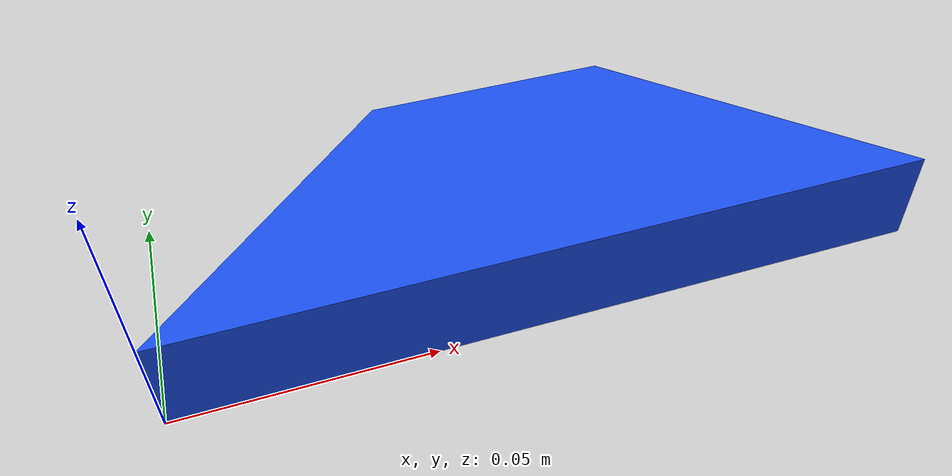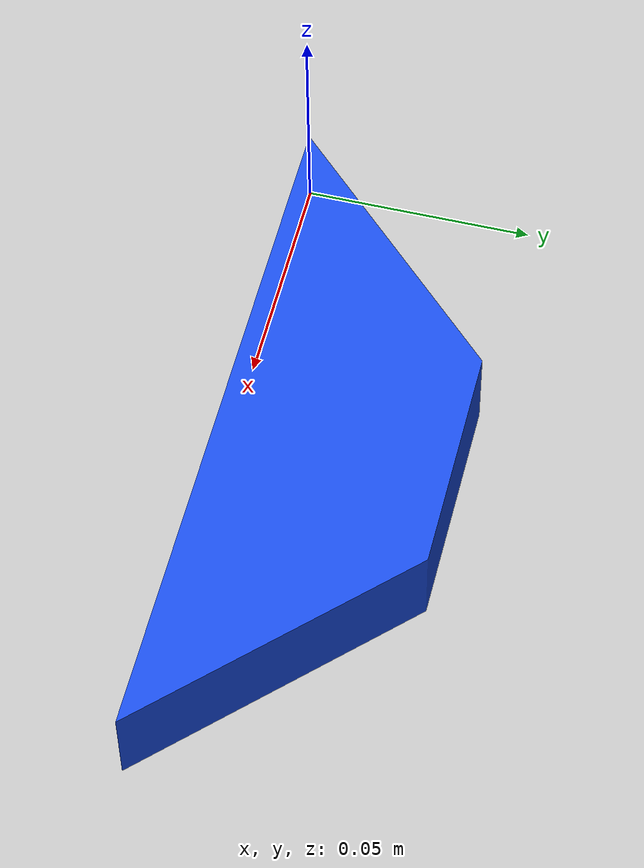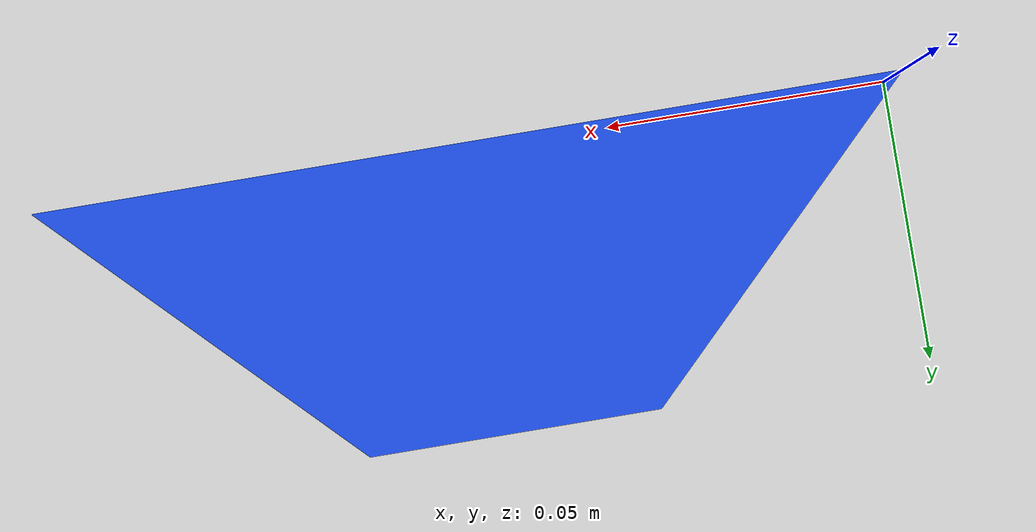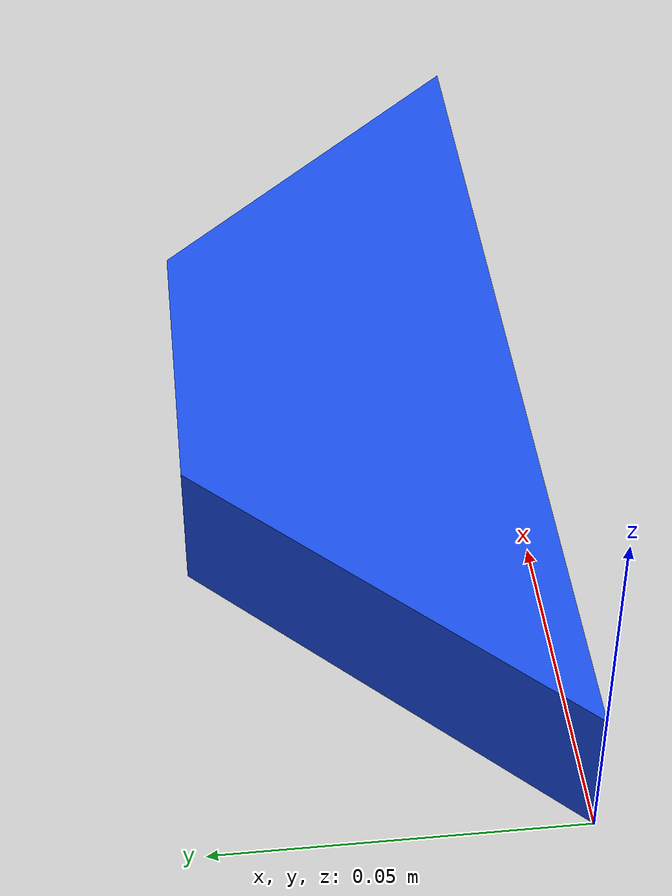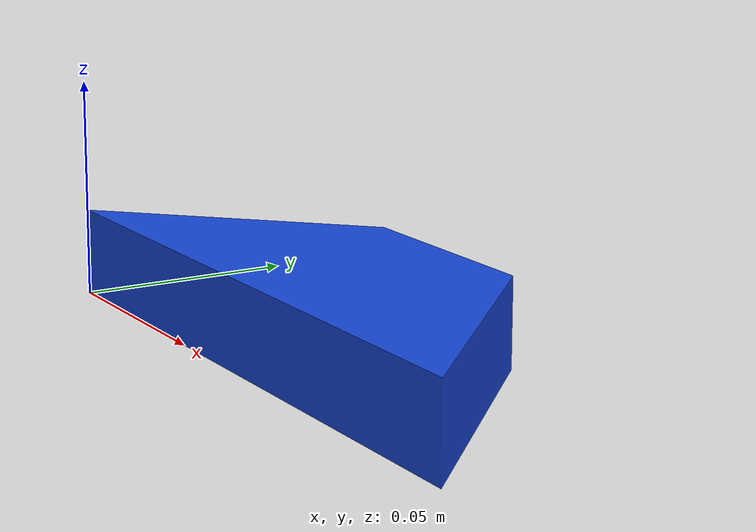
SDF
<sdf version="1.7">
  <model name="trapezoid">
    <link name="trapezoid_link">
      <inertial>
        <mass>0.025000</mass>
        <inertia>
          <ixx>5.416667e-06</ixx>
          <iyy>4.708333e-05</iyy>
          <izz>5.208333e-05</izz>
          <ixy>0</ixy>
          <ixz>0</ixz>
          <iyz>0</iyz>
        </inertia>
      </inertial>
      <visual name="visual">
        <geometry>
          <mesh>
            <uri>trapezoid.obj</uri>
            <scale>1 1 2</scale>
          </mesh>
        </geometry>
                <material>
                    <ambient>0.050 0.150 0.450 1.000</ambient>
                    <diffuse>0.100 0.300 0.900 1.000</diffuse>
                    <specular>0.2 0.2 0.2 1</specular>
                    <emissive>0 0 0 1</emissive>
                </material>
      </visual>
      <collision name="collision">
        <geometry>
          <mesh>
            <uri>trapezoid.obj</uri>
            <scale>1 1 2</scale>
          </mesh>
        </geometry>
        <surface>
          <friction>
            <ode>
              <mu>5.0</mu>
              <mu2>5.0</mu2>
            </ode>
          </friction>
        </surface>
      </collision>
    </link>
  </model>
</sdf>
